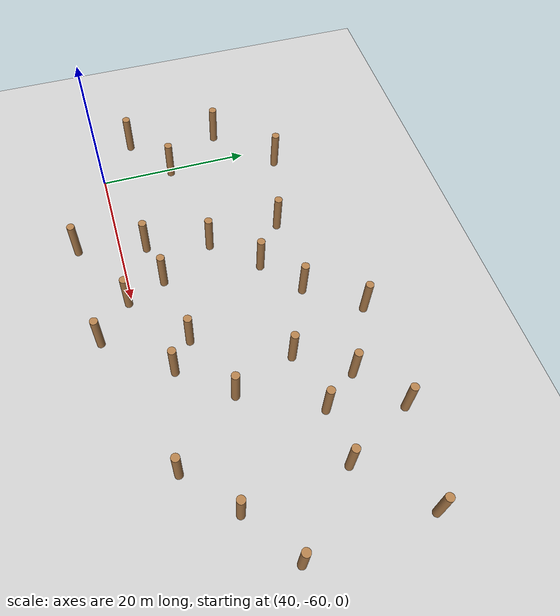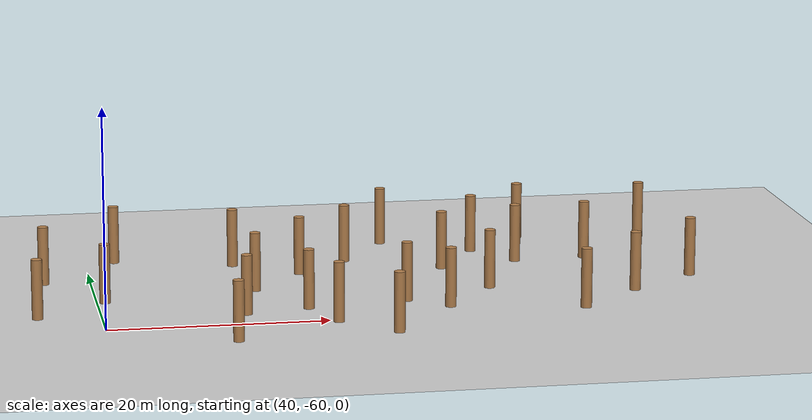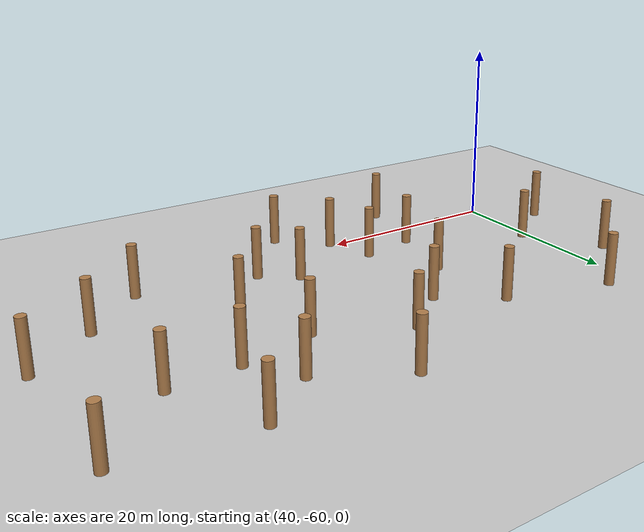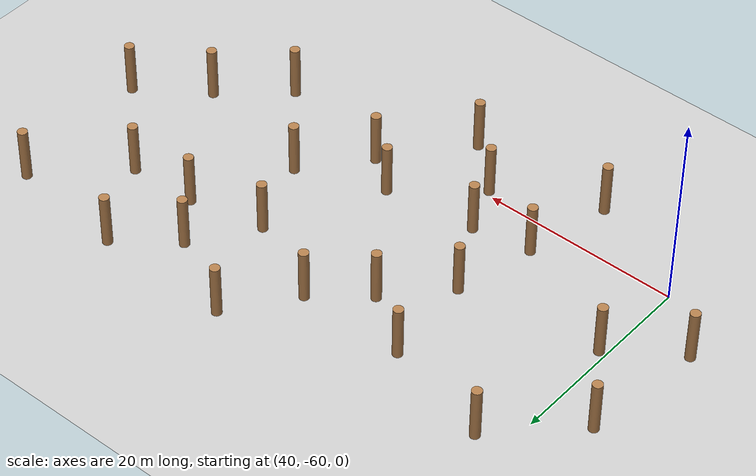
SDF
<sdf version="1.6">
 <world name="default">
  <model name="ground_plane">
   <static>1</static>
   <link name="link">
    <collision name="collision">
     <geometry><plane><normal>0 0 1</normal><size>100 100</size></plane></geometry>
     <surface><friction><ode><mu>100</mu><mu2>50</mu2></ode></friction></surface>
    </collision>
    <visual name="visual">
     <cast_shadows>0</cast_shadows>
     <geometry><plane><normal>0 0 1</normal><size>100 100</size></plane></geometry>
     <material>
      <script><uri>file://media/materials/scripts/gazebo.material</uri><name>Gazebo/Grey</name></script>
     </material>
    </visual>
   </link>
  </model>
  <model name="WoodPillars_4">
   <link name="link_clone_13">
    <inertial>
     <mass>1</mass>
     <inertia><ixx>0.145833</ixx><ixy>0</ixy><ixz>0</ixz><iyy>0.145833</iyy><iyz>0</iyz><izz>0.125</izz></inertia>
    </inertial>
    <pose>32.2715 -23.3528 -3e-06 0 -0 -0.001289</pose>
    <visual name="visual">
     <geometry><cylinder><radius>0.5</radius><length>5.50507</length></cylinder></geometry>
     <material>
      <script><name>Gazebo/Wood</name><uri>file://media/materials/scripts/gazebo.material</uri></script>
      <shader type="pixel"/>
     </material>
    </visual>
    <collision name="collision">
     <geometry><cylinder><radius>0.5</radius><length>5.50507</length></cylinder></geometry>
     <surface>
      <friction>
       <ode><mu>1</mu><mu2>1</mu2><fdir1>0 0 0</fdir1><slip1>0</slip1><slip2>0</slip2></ode>
       <torsional>
        <coefficient>1</coefficient>
        <patch_radius>0</patch_radius>
        <surface_radius>0</surface_radius>
        <use_patch_radius>1</use_patch_radius>
        <ode><slip>0</slip></ode>
       </torsional>
      </friction>
      <bounce><restitution_coefficient>0</restitution_coefficient><threshold>1e+06</threshold></bounce>
      <contact>
       <collide_without_contact>0</collide_without_contact>
       <collide_without_contact_bitmask>1</collide_without_contact_bitmask>
       <collide_bitmask>1</collide_bitmask>
       <ode>
        <soft_cfm>0</soft_cfm>
        <soft_erp>0.2</soft_erp>
        <kp>1e+13</kp>
        <kd>1</kd>
        <max_vel>0.01</max_vel>
        <min_depth>0</min_depth>
       </ode>
       <bullet>
        <split_impulse>1</split_impulse>
        <split_impulse_penetration_threshold>-0.01</split_impulse_penetration_threshold>
        <soft_cfm>0</soft_cfm>
        <soft_erp>0.2</soft_erp>
        <kp>1e+13</kp>
        <kd>1</kd>
       </bullet>
      </contact>
     </surface>
    </collision>
   </link>
   <link name="link_clone_14">
    <inertial>
     <mass>1</mass>
     <inertia><ixx>0.145833</ixx><ixy>0</ixy><ixz>0</ixz><iyy>0.145833</iyy><iyz>0</iyz><izz>0.125</izz></inertia>
    </inertial>
    <pose>9.31461 -20.9997 -1e-06 0 -0 -0.001289</pose>
    <visual name="visual">
     <geometry><cylinder><radius>0.5</radius><length>5.50507</length></cylinder></geometry>
     <material>
      <script><name>Gazebo/Wood</name><uri>file://media/materials/scripts/gazebo.material</uri></script>
      <shader type="pixel"/>
     </material>
    </visual>
    <collision name="collision">
     <geometry><cylinder><radius>0.5</radius><length>5.50507</length></cylinder></geometry>
     <surface>
      <friction>
       <ode><mu>1</mu><mu2>1</mu2><fdir1>0 0 0</fdir1><slip1>0</slip1><slip2>0</slip2></ode>
       <torsional>
        <coefficient>1</coefficient>
        <patch_radius>0</patch_radius>
        <surface_radius>0</surface_radius>
        <use_patch_radius>1</use_patch_radius>
        <ode><slip>0</slip></ode>
       </torsional>
      </friction>
      <bounce><restitution_coefficient>0</restitution_coefficient><threshold>1e+06</threshold></bounce>
      <contact>
       <collide_without_contact>0</collide_without_contact>
       <collide_without_contact_bitmask>1</collide_without_contact_bitmask>
       <collide_bitmask>1</collide_bitmask>
       <ode>
        <soft_cfm>0</soft_cfm>
        <soft_erp>0.2</soft_erp>
        <kp>1e+13</kp>
        <kd>1</kd>
        <max_vel>0.01</max_vel>
        <min_depth>0</min_depth>
       </ode>
       <bullet>
        <split_impulse>1</split_impulse>
        <split_impulse_penetration_threshold>-0.01</split_impulse_penetration_threshold>
        <soft_cfm>0</soft_cfm>
        <soft_erp>0.2</soft_erp>
        <kp>1e+13</kp>
        <kd>1</kd>
       </bullet>
      </contact>
     </surface>
    </collision>
   </link>
   <link name="link_clone_15">
    <inertial>
     <mass>1</mass>
     <inertia><ixx>0.145833</ixx><ixy>0</ixy><ixz>0</ixz><iyy>0.145833</iyy><iyz>0</iyz><izz>0.125</izz></inertia>
    </inertial>
    <pose>17.9894 -25.1945 -2e-06 0 -0 -0.001289</pose>
    <visual name="visual">
     <geometry><cylinder><radius>0.5</radius><length>5.50507</length></cylinder></geometry>
     <material>
      <script><name>Gazebo/Wood</name><uri>file://media/materials/scripts/gazebo.material</uri></script>
      <shader type="pixel"/>
     </material>
    </visual>
    <collision name="collision">
     <geometry><cylinder><radius>0.5</radius><length>5.50507</length></cylinder></geometry>
     <surface>
      <friction>
       <ode><mu>1</mu><mu2>1</mu2><fdir1>0 0 0</fdir1><slip1>0</slip1><slip2>0</slip2></ode>
       <torsional>
        <coefficient>1</coefficient>
        <patch_radius>0</patch_radius>
        <surface_radius>0</surface_radius>
        <use_patch_radius>1</use_patch_radius>
        <ode><slip>0</slip></ode>
       </torsional>
      </friction>
      <bounce><restitution_coefficient>0</restitution_coefficient><threshold>1e+06</threshold></bounce>
      <contact>
       <collide_without_contact>0</collide_without_contact>
       <collide_without_contact_bitmask>1</collide_without_contact_bitmask>
       <collide_bitmask>1</collide_bitmask>
       <ode>
        <soft_cfm>0</soft_cfm>
        <soft_erp>0.2</soft_erp>
        <kp>1e+13</kp>
        <kd>1</kd>
        <max_vel>0.01</max_vel>
        <min_depth>0</min_depth>
       </ode>
       <bullet>
        <split_impulse>1</split_impulse>
        <split_impulse_penetration_threshold>-0.01</split_impulse_penetration_threshold>
        <soft_cfm>0</soft_cfm>
        <soft_erp>0.2</soft_erp>
        <kp>1e+13</kp>
        <kd>1</kd>
       </bullet>
      </contact>
     </surface>
    </collision>
   </link>
   <link name="link_clone_26">
    <inertial>
     <mass>1</mass>
     <inertia><ixx>0.145833</ixx><ixy>0</ixy><ixz>0</ixz><iyy>0.145833</iyy><iyz>0</iyz><izz>0.125</izz></inertia>
    </inertial>
    <pose>13.9187 -14.5508 -1e-06 0 -0 -0.001289</pose>
    <visual name="visual">
     <geometry><cylinder><radius>0.5</radius><length>5.50507</length></cylinder></geometry>
     <material>
      <script><name>Gazebo/Wood</name><uri>file://media/materials/scripts/gazebo.material</uri></script>
      <shader type="pixel"/>
     </material>
    </visual>
    <collision name="collision">
     <geometry><cylinder><radius>0.5</radius><length>5.50507</length></cylinder></geometry>
     <surface>
      <friction>
       <ode><mu>1</mu><mu2>1</mu2><fdir1>0 0 0</fdir1><slip1>0</slip1><slip2>0</slip2></ode>
       <torsional>
        <coefficient>1</coefficient>
        <patch_radius>0</patch_radius>
        <surface_radius>0</surface_radius>
        <use_patch_radius>1</use_patch_radius>
        <ode><slip>0</slip></ode>
       </torsional>
      </friction>
      <bounce><restitution_coefficient>0</restitution_coefficient><threshold>1e+06</threshold></bounce>
      <contact>
       <collide_without_contact>0</collide_without_contact>
       <collide_without_contact_bitmask>1</collide_without_contact_bitmask>
       <collide_bitmask>1</collide_bitmask>
       <ode>
        <soft_cfm>0</soft_cfm>
        <soft_erp>0.2</soft_erp>
        <kp>1e+13</kp>
        <kd>1</kd>
        <max_vel>0.01</max_vel>
        <min_depth>0</min_depth>
       </ode>
       <bullet>
        <split_impulse>1</split_impulse>
        <split_impulse_penetration_threshold>-0.01</split_impulse_penetration_threshold>
        <soft_cfm>0</soft_cfm>
        <soft_erp>0.2</soft_erp>
        <kp>1e+13</kp>
        <kd>1</kd>
       </bullet>
      </contact>
     </surface>
    </collision>
   </link>
   <link name="link_clone_27">
    <inertial>
     <mass>1</mass>
     <inertia><ixx>0.145833</ixx><ixy>0</ixy><ixz>0</ixz><iyy>0.145833</iyy><iyz>0</iyz><izz>0.125</izz></inertia>
    </inertial>
    <pose>4.38632 -25.0605 -1e-06 0 -0 -0.001289</pose>
    <visual name="visual">
     <geometry><cylinder><radius>0.5</radius><length>5.50507</length></cylinder></geometry>
     <material>
      <script><name>Gazebo/Wood</name><uri>file://media/materials/scripts/gazebo.material</uri></script>
      <shader type="pixel"/>
     </material>
    </visual>
    <collision name="collision">
     <geometry><cylinder><radius>0.5</radius><length>5.50507</length></cylinder></geometry>
     <surface>
      <friction>
       <ode><mu>1</mu><mu2>1</mu2><fdir1>0 0 0</fdir1><slip1>0</slip1><slip2>0</slip2></ode>
       <torsional>
        <coefficient>1</coefficient>
        <patch_radius>0</patch_radius>
        <surface_radius>0</surface_radius>
        <use_patch_radius>1</use_patch_radius>
        <ode><slip>0</slip></ode>
       </torsional>
      </friction>
      <bounce><restitution_coefficient>0</restitution_coefficient><threshold>1e+06</threshold></bounce>
      <contact>
       <collide_without_contact>0</collide_without_contact>
       <collide_without_contact_bitmask>1</collide_without_contact_bitmask>
       <collide_bitmask>1</collide_bitmask>
       <ode>
        <soft_cfm>0</soft_cfm>
        <soft_erp>0.2</soft_erp>
        <kp>1e+13</kp>
        <kd>1</kd>
        <max_vel>0.01</max_vel>
        <min_depth>0</min_depth>
       </ode>
       <bullet>
        <split_impulse>1</split_impulse>
        <split_impulse_penetration_threshold>-0.01</split_impulse_penetration_threshold>
        <soft_cfm>0</soft_cfm>
        <soft_erp>0.2</soft_erp>
        <kp>1e+13</kp>
        <kd>1</kd>
       </bullet>
      </contact>
     </surface>
    </collision>
   </link>
   <link name="link_clone_28">
    <inertial>
     <mass>1</mass>
     <inertia><ixx>0.145833</ixx><ixy>0</ixy><ixz>0</ixz><iyy>0.145833</iyy><iyz>0</iyz><izz>0.125</izz></inertia>
    </inertial>
    <pose>27.5353 -14.766 -3e-06 0 -0 -0.001289</pose>
    <visual name="visual">
     <geometry><cylinder><radius>0.5</radius><length>5.50507</length></cylinder></geometry>
     <material>
      <script><name>Gazebo/Wood</name><uri>file://media/materials/scripts/gazebo.material</uri></script>
      <shader type="pixel"/>
     </material>
    </visual>
    <collision name="collision">
     <geometry><cylinder><radius>0.5</radius><length>5.50507</length></cylinder></geometry>
     <surface>
      <friction>
       <ode><mu>1</mu><mu2>1</mu2><fdir1>0 0 0</fdir1><slip1>0</slip1><slip2>0</slip2></ode>
       <torsional>
        <coefficient>1</coefficient>
        <patch_radius>0</patch_radius>
        <surface_radius>0</surface_radius>
        <use_patch_radius>1</use_patch_radius>
        <ode><slip>0</slip></ode>
       </torsional>
      </friction>
      <bounce><restitution_coefficient>0</restitution_coefficient><threshold>1e+06</threshold></bounce>
      <contact>
       <collide_without_contact>0</collide_without_contact>
       <collide_without_contact_bitmask>1</collide_without_contact_bitmask>
       <collide_bitmask>1</collide_bitmask>
       <ode>
        <soft_cfm>0</soft_cfm>
        <soft_erp>0.2</soft_erp>
        <kp>1e+13</kp>
        <kd>1</kd>
        <max_vel>0.01</max_vel>
        <min_depth>0</min_depth>
       </ode>
       <bullet>
        <split_impulse>1</split_impulse>
        <split_impulse_penetration_threshold>-0.01</split_impulse_penetration_threshold>
        <soft_cfm>0</soft_cfm>
        <soft_erp>0.2</soft_erp>
        <kp>1e+13</kp>
        <kd>1</kd>
       </bullet>
      </contact>
     </surface>
    </collision>
   </link>
   <link name="link_clone_29">
    <inertial>
     <mass>1</mass>
     <inertia><ixx>0.145833</ixx><ixy>0</ixy><ixz>0</ixz><iyy>0.145833</iyy><iyz>0</iyz><izz>0.125</izz></inertia>
    </inertial>
    <pose>39.4401 -16.2696 -4e-06 0 -0 -0.001289</pose>
    <visual name="visual">
     <geometry><cylinder><radius>0.5</radius><length>5.50507</length></cylinder></geometry>
     <material>
      <script><name>Gazebo/Wood</name><uri>file://media/materials/scripts/gazebo.material</uri></script>
      <shader type="pixel"/>
     </material>
    </visual>
    <collision name="collision">
     <geometry><cylinder><radius>0.5</radius><length>5.50507</length></cylinder></geometry>
     <surface>
      <friction>
       <ode><mu>1</mu><mu2>1</mu2><fdir1>0 0 0</fdir1><slip1>0</slip1><slip2>0</slip2></ode>
       <torsional>
        <coefficient>1</coefficient>
        <patch_radius>0</patch_radius>
        <surface_radius>0</surface_radius>
        <use_patch_radius>1</use_patch_radius>
        <ode><slip>0</slip></ode>
       </torsional>
      </friction>
      <bounce><restitution_coefficient>0</restitution_coefficient><threshold>1e+06</threshold></bounce>
      <contact>
       <collide_without_contact>0</collide_without_contact>
       <collide_without_contact_bitmask>1</collide_without_contact_bitmask>
       <collide_bitmask>1</collide_bitmask>
       <ode>
        <soft_cfm>0</soft_cfm>
        <soft_erp>0.2</soft_erp>
        <kp>1e+13</kp>
        <kd>1</kd>
        <max_vel>0.01</max_vel>
        <min_depth>0</min_depth>
       </ode>
       <bullet>
        <split_impulse>1</split_impulse>
        <split_impulse_penetration_threshold>-0.01</split_impulse_penetration_threshold>
        <soft_cfm>0</soft_cfm>
        <soft_erp>0.2</soft_erp>
        <kp>1e+13</kp>
        <kd>1</kd>
       </bullet>
      </contact>
     </surface>
    </collision>
   </link>
   <link name="link_clone_34">
    <inertial>
     <mass>1</mass>
     <inertia><ixx>0.145833</ixx><ixy>0</ixy><ixz>0</ixz><iyy>0.145833</iyy><iyz>0</iyz><izz>0.125</izz></inertia>
    </inertial>
    <pose>25.4673 -23.5908 -3e-06 0 -0 -0.001289</pose>
    <visual name="visual">
     <geometry><cylinder><radius>0.5</radius><length>5.50507</length></cylinder></geometry>
     <material>
      <script><name>Gazebo/Wood</name><uri>file://media/materials/scripts/gazebo.material</uri></script>
      <shader type="pixel"/>
     </material>
    </visual>
    <collision name="collision">
     <geometry><cylinder><radius>0.5</radius><length>5.50507</length></cylinder></geometry>
     <surface>
      <friction>
       <ode><mu>1</mu><mu2>1</mu2><fdir1>0 0 0</fdir1><slip1>0</slip1><slip2>0</slip2></ode>
       <torsional>
        <coefficient>1</coefficient>
        <patch_radius>0</patch_radius>
        <surface_radius>0</surface_radius>
        <use_patch_radius>1</use_patch_radius>
        <ode><slip>0</slip></ode>
       </torsional>
      </friction>
      <bounce><restitution_coefficient>0</restitution_coefficient><threshold>1e+06</threshold></bounce>
      <contact>
       <collide_without_contact>0</collide_without_contact>
       <collide_without_contact_bitmask>1</collide_without_contact_bitmask>
       <collide_bitmask>1</collide_bitmask>
       <ode>
        <soft_cfm>0</soft_cfm>
        <soft_erp>0.2</soft_erp>
        <kp>1e+13</kp>
        <kd>1</kd>
        <max_vel>0.01</max_vel>
        <min_depth>0</min_depth>
       </ode>
       <bullet>
        <split_impulse>1</split_impulse>
        <split_impulse_penetration_threshold>-0.01</split_impulse_penetration_threshold>
        <soft_cfm>0</soft_cfm>
        <soft_erp>0.2</soft_erp>
        <kp>1e+13</kp>
        <kd>1</kd>
       </bullet>
      </contact>
     </surface>
    </collision>
   </link>
   <link name="link_clone_7">
    <inertial>
     <mass>1</mass>
     <inertia><ixx>0.145833</ixx><ixy>0</ixy><ixz>0</ixz><iyy>0.145833</iyy><iyz>0</iyz><izz>0.125</izz></inertia>
    </inertial>
    <pose>22.0331 -19.0814 -2e-06 0 -0 -0.001289</pose>
    <visual name="visual">
     <geometry><cylinder><radius>0.5</radius><length>5.50507</length></cylinder></geometry>
     <material>
      <script><name>Gazebo/Wood</name><uri>file://media/materials/scripts/gazebo.material</uri></script>
      <shader type="pixel"/>
     </material>
    </visual>
    <collision name="collision">
     <geometry><cylinder><radius>0.5</radius><length>5.50507</length></cylinder></geometry>
     <surface>
      <friction>
       <ode><mu>1</mu><mu2>1</mu2><fdir1>0 0 0</fdir1><slip1>0</slip1><slip2>0</slip2></ode>
       <torsional>
        <coefficient>1</coefficient>
        <patch_radius>0</patch_radius>
        <surface_radius>0</surface_radius>
        <use_patch_radius>1</use_patch_radius>
        <ode><slip>0</slip></ode>
       </torsional>
      </friction>
      <bounce><restitution_coefficient>0</restitution_coefficient><threshold>1e+06</threshold></bounce>
      <contact>
       <collide_without_contact>0</collide_without_contact>
       <collide_without_contact_bitmask>1</collide_without_contact_bitmask>
       <collide_bitmask>1</collide_bitmask>
       <ode>
        <soft_cfm>0</soft_cfm>
        <soft_erp>0.2</soft_erp>
        <kp>1e+13</kp>
        <kd>1</kd>
        <max_vel>0.01</max_vel>
        <min_depth>0</min_depth>
       </ode>
       <bullet>
        <split_impulse>1</split_impulse>
        <split_impulse_penetration_threshold>-0.01</split_impulse_penetration_threshold>
        <soft_cfm>0</soft_cfm>
        <soft_erp>0.2</soft_erp>
        <kp>1e+13</kp>
        <kd>1</kd>
       </bullet>
      </contact>
     </surface>
    </collision>
   </link>
   <link name="link_clone_9">
    <inertial>
     <mass>1</mass>
     <inertia><ixx>0.145833</ixx><ixy>0</ixy><ixz>0</ixz><iyy>0.145833</iyy><iyz>0</iyz><izz>0.125</izz></inertia>
    </inertial>
    <pose>-1.43964 -21.0028 0 0 -0 -0.001289</pose>
    <visual name="visual">
     <geometry><cylinder><radius>0.5</radius><length>5.50507</length></cylinder></geometry>
     <material>
      <script><name>Gazebo/Wood</name><uri>file://media/materials/scripts/gazebo.material</uri></script>
      <shader type="pixel"/>
     </material>
    </visual>
    <collision name="collision">
     <geometry><cylinder><radius>0.5</radius><length>5.50507</length></cylinder></geometry>
     <surface>
      <friction>
       <ode><mu>1</mu><mu2>1</mu2><fdir1>0 0 0</fdir1><slip1>0</slip1><slip2>0</slip2></ode>
       <torsional>
        <coefficient>1</coefficient>
        <patch_radius>0</patch_radius>
        <surface_radius>0</surface_radius>
        <use_patch_radius>1</use_patch_radius>
        <ode><slip>0</slip></ode>
       </torsional>
      </friction>
      <bounce><restitution_coefficient>0</restitution_coefficient><threshold>1e+06</threshold></bounce>
      <contact>
       <collide_without_contact>0</collide_without_contact>
       <collide_without_contact_bitmask>1</collide_without_contact_bitmask>
       <collide_bitmask>1</collide_bitmask>
       <ode>
        <soft_cfm>0</soft_cfm>
        <soft_erp>0.2</soft_erp>
        <kp>1e+13</kp>
        <kd>1</kd>
        <max_vel>0.01</max_vel>
        <min_depth>0</min_depth>
       </ode>
       <bullet>
        <split_impulse>1</split_impulse>
        <split_impulse_penetration_threshold>-0.01</split_impulse_penetration_threshold>
        <soft_cfm>0</soft_cfm>
        <soft_erp>0.2</soft_erp>
        <kp>1e+13</kp>
        <kd>1</kd>
       </bullet>
      </contact>
     </surface>
    </collision>
   </link>
   <static>0</static>
   <pose>55.2629 -17.9892 2.75253 0 -0 0.001504</pose>
  </model>
  <model name="WoodPillars_5">
   <link name="link_clone_10">
    <inertial>
     <mass>1</mass>
     <inertia><ixx>0.145833</ixx><ixy>0</ixy><ixz>0</ixz><iyy>0.145833</iyy><iyz>0</iyz><izz>0.125</izz></inertia>
    </inertial>
    <pose>2.50237 12.8939 0 0 -0 -0.001289</pose>
    <visual name="visual">
     <geometry><cylinder><radius>0.5</radius><length>5.50507</length></cylinder></geometry>
     <material>
      <script><name>Gazebo/Wood</name><uri>file://media/materials/scripts/gazebo.material</uri></script>
      <shader type="pixel"/>
     </material>
    </visual>
    <collision name="collision">
     <geometry><cylinder><radius>0.5</radius><length>5.50507</length></cylinder></geometry>
     <surface>
      <friction>
       <ode><mu>1</mu><mu2>1</mu2><fdir1>0 0 0</fdir1><slip1>0</slip1><slip2>0</slip2></ode>
       <torsional>
        <coefficient>1</coefficient>
        <patch_radius>0</patch_radius>
        <surface_radius>0</surface_radius>
        <use_patch_radius>1</use_patch_radius>
        <ode><slip>0</slip></ode>
       </torsional>
      </friction>
      <bounce><restitution_coefficient>0</restitution_coefficient><threshold>1e+06</threshold></bounce>
      <contact>
       <collide_without_contact>0</collide_without_contact>
       <collide_without_contact_bitmask>1</collide_without_contact_bitmask>
       <collide_bitmask>1</collide_bitmask>
       <ode>
        <soft_cfm>0</soft_cfm>
        <soft_erp>0.2</soft_erp>
        <kp>1e+13</kp>
        <kd>1</kd>
        <max_vel>0.01</max_vel>
        <min_depth>0</min_depth>
       </ode>
       <bullet>
        <split_impulse>1</split_impulse>
        <split_impulse_penetration_threshold>-0.01</split_impulse_penetration_threshold>
        <soft_cfm>0</soft_cfm>
        <soft_erp>0.2</soft_erp>
        <kp>1e+13</kp>
        <kd>1</kd>
       </bullet>
      </contact>
     </surface>
    </collision>
   </link>
   <link name="link_clone_11">
    <inertial>
     <mass>1</mass>
     <inertia><ixx>0.145833</ixx><ixy>0</ixy><ixz>0</ixz><iyy>0.145833</iyy><iyz>0</iyz><izz>0.125</izz></inertia>
    </inertial>
    <pose>20.1245 17.4079 -2e-06 0 -0 -0.001289</pose>
    <visual name="visual">
     <geometry><cylinder><radius>0.5</radius><length>5.50507</length></cylinder></geometry>
     <material>
      <script><name>Gazebo/Wood</name><uri>file://media/materials/scripts/gazebo.material</uri></script>
      <shader type="pixel"/>
     </material>
    </visual>
    <collision name="collision">
     <geometry><cylinder><radius>0.5</radius><length>5.50507</length></cylinder></geometry>
     <surface>
      <friction>
       <ode><mu>1</mu><mu2>1</mu2><fdir1>0 0 0</fdir1><slip1>0</slip1><slip2>0</slip2></ode>
       <torsional>
        <coefficient>1</coefficient>
        <patch_radius>0</patch_radius>
        <surface_radius>0</surface_radius>
        <use_patch_radius>1</use_patch_radius>
        <ode><slip>0</slip></ode>
       </torsional>
      </friction>
      <bounce><restitution_coefficient>0</restitution_coefficient><threshold>1e+06</threshold></bounce>
      <contact>
       <collide_without_contact>0</collide_without_contact>
       <collide_without_contact_bitmask>1</collide_without_contact_bitmask>
       <collide_bitmask>1</collide_bitmask>
       <ode>
        <soft_cfm>0</soft_cfm>
        <soft_erp>0.2</soft_erp>
        <kp>1e+13</kp>
        <kd>1</kd>
        <max_vel>0.01</max_vel>
        <min_depth>0</min_depth>
       </ode>
       <bullet>
        <split_impulse>1</split_impulse>
        <split_impulse_penetration_threshold>-0.01</split_impulse_penetration_threshold>
        <soft_cfm>0</soft_cfm>
        <soft_erp>0.2</soft_erp>
        <kp>1e+13</kp>
        <kd>1</kd>
       </bullet>
      </contact>
     </surface>
    </collision>
   </link>
   <link name="link_clone_18">
    <inertial>
     <mass>1</mass>
     <inertia><ixx>0.145833</ixx><ixy>0</ixy><ixz>0</ixz><iyy>0.145833</iyy><iyz>0</iyz><izz>0.125</izz></inertia>
    </inertial>
    <pose>9.1573 3.67739 -1e-06 0 -0 -0.001289</pose>
    <visual name="visual">
     <geometry><cylinder><radius>0.5</radius><length>5.50507</length></cylinder></geometry>
     <material>
      <script><name>Gazebo/Wood</name><uri>file://media/materials/scripts/gazebo.material</uri></script>
      <shader type="pixel"/>
     </material>
    </visual>
    <collision name="collision">
     <geometry><cylinder><radius>0.5</radius><length>5.50507</length></cylinder></geometry>
     <surface>
      <friction>
       <ode><mu>1</mu><mu2>1</mu2><fdir1>0 0 0</fdir1><slip1>0</slip1><slip2>0</slip2></ode>
       <torsional>
        <coefficient>1</coefficient>
        <patch_radius>0</patch_radius>
        <surface_radius>0</surface_radius>
        <use_patch_radius>1</use_patch_radius>
        <ode><slip>0</slip></ode>
       </torsional>
      </friction>
      <bounce><restitution_coefficient>0</restitution_coefficient><threshold>1e+06</threshold></bounce>
      <contact>
       <collide_without_contact>0</collide_without_contact>
       <collide_without_contact_bitmask>1</collide_without_contact_bitmask>
       <collide_bitmask>1</collide_bitmask>
       <ode>
        <soft_cfm>0</soft_cfm>
        <soft_erp>0.2</soft_erp>
        <kp>1e+13</kp>
        <kd>1</kd>
        <max_vel>0.01</max_vel>
        <min_depth>0</min_depth>
       </ode>
       <bullet>
        <split_impulse>1</split_impulse>
        <split_impulse_penetration_threshold>-0.01</split_impulse_penetration_threshold>
        <soft_cfm>0</soft_cfm>
        <soft_erp>0.2</soft_erp>
        <kp>1e+13</kp>
        <kd>1</kd>
       </bullet>
      </contact>
     </surface>
    </collision>
   </link>
   <link name="link_clone_19">
    <inertial>
     <mass>1</mass>
     <inertia><ixx>0.145833</ixx><ixy>0</ixy><ixz>0</ixz><iyy>0.145833</iyy><iyz>0</iyz><izz>0.125</izz></inertia>
    </inertial>
    <pose>-3.28611 11.8265 -0 0 -0 -0.001289</pose>
    <visual name="visual">
     <geometry><cylinder><radius>0.5</radius><length>5.50507</length></cylinder></geometry>
     <material>
      <script><name>Gazebo/Wood</name><uri>file://media/materials/scripts/gazebo.material</uri></script>
      <shader type="pixel"/>
     </material>
    </visual>
    <collision name="collision">
     <geometry><cylinder><radius>0.5</radius><length>5.50507</length></cylinder></geometry>
     <surface>
      <friction>
       <ode><mu>1</mu><mu2>1</mu2><fdir1>0 0 0</fdir1><slip1>0</slip1><slip2>0</slip2></ode>
       <torsional>
        <coefficient>1</coefficient>
        <patch_radius>0</patch_radius>
        <surface_radius>0</surface_radius>
        <use_patch_radius>1</use_patch_radius>
        <ode><slip>0</slip></ode>
       </torsional>
      </friction>
      <bounce><restitution_coefficient>0</restitution_coefficient><threshold>1e+06</threshold></bounce>
      <contact>
       <collide_without_contact>0</collide_without_contact>
       <collide_without_contact_bitmask>1</collide_without_contact_bitmask>
       <collide_bitmask>1</collide_bitmask>
       <ode>
        <soft_cfm>0</soft_cfm>
        <soft_erp>0.2</soft_erp>
        <kp>1e+13</kp>
        <kd>1</kd>
        <max_vel>0.01</max_vel>
        <min_depth>0</min_depth>
       </ode>
       <bullet>
        <split_impulse>1</split_impulse>
        <split_impulse_penetration_threshold>-0.01</split_impulse_penetration_threshold>
        <soft_cfm>0</soft_cfm>
        <soft_erp>0.2</soft_erp>
        <kp>1e+13</kp>
        <kd>1</kd>
       </bullet>
      </contact>
     </surface>
    </collision>
   </link>
   <link name="link_clone_21">
    <inertial>
     <mass>1</mass>
     <inertia><ixx>0.145833</ixx><ixy>0</ixy><ixz>0</ixz><iyy>0.145833</iyy><iyz>0</iyz><izz>0.125</izz></inertia>
    </inertial>
    <pose>15.2748 11.406 -1e-06 0 -0 -0.001289</pose>
    <visual name="visual">
     <geometry><cylinder><radius>0.5</radius><length>5.50507</length></cylinder></geometry>
     <material>
      <script><name>Gazebo/Wood</name><uri>file://media/materials/scripts/gazebo.material</uri></script>
      <shader type="pixel"/>
     </material>
    </visual>
    <collision name="collision">
     <geometry><cylinder><radius>0.5</radius><length>5.50507</length></cylinder></geometry>
     <surface>
      <friction>
       <ode><mu>1</mu><mu2>1</mu2><fdir1>0 0 0</fdir1><slip1>0</slip1><slip2>0</slip2></ode>
       <torsional>
        <coefficient>1</coefficient>
        <patch_radius>0</patch_radius>
        <surface_radius>0</surface_radius>
        <use_patch_radius>1</use_patch_radius>
        <ode><slip>0</slip></ode>
       </torsional>
      </friction>
      <bounce><restitution_coefficient>0</restitution_coefficient><threshold>1e+06</threshold></bounce>
      <contact>
       <collide_without_contact>0</collide_without_contact>
       <collide_without_contact_bitmask>1</collide_without_contact_bitmask>
       <collide_bitmask>1</collide_bitmask>
       <ode>
        <soft_cfm>0</soft_cfm>
        <soft_erp>0.2</soft_erp>
        <kp>1e+13</kp>
        <kd>1</kd>
        <max_vel>0.01</max_vel>
        <min_depth>0</min_depth>
       </ode>
       <bullet>
        <split_impulse>1</split_impulse>
        <split_impulse_penetration_threshold>-0.01</split_impulse_penetration_threshold>
        <soft_cfm>0</soft_cfm>
        <soft_erp>0.2</soft_erp>
        <kp>1e+13</kp>
        <kd>1</kd>
       </bullet>
      </contact>
     </surface>
    </collision>
   </link>
   <link name="link_clone_22">
    <inertial>
     <mass>1</mass>
     <inertia><ixx>0.145833</ixx><ixy>0</ixy><ixz>0</ixz><iyy>0.145833</iyy><iyz>0</iyz><izz>0.125</izz></inertia>
    </inertial>
    <pose>27.313 9.05961 -2e-06 0 -0 -0.001289</pose>
    <visual name="visual">
     <geometry><cylinder><radius>0.5</radius><length>5.50507</length></cylinder></geometry>
     <material>
      <script><name>Gazebo/Wood</name><uri>file://media/materials/scripts/gazebo.material</uri></script>
      <shader type="pixel"/>
     </material>
    </visual>
    <collision name="collision">
     <geometry><cylinder><radius>0.5</radius><length>5.50507</length></cylinder></geometry>
     <surface>
      <friction>
       <ode><mu>1</mu><mu2>1</mu2><fdir1>0 0 0</fdir1><slip1>0</slip1><slip2>0</slip2></ode>
       <torsional>
        <coefficient>1</coefficient>
        <patch_radius>0</patch_radius>
        <surface_radius>0</surface_radius>
        <use_patch_radius>1</use_patch_radius>
        <ode><slip>0</slip></ode>
       </torsional>
      </friction>
      <bounce><restitution_coefficient>0</restitution_coefficient><threshold>1e+06</threshold></bounce>
      <contact>
       <collide_without_contact>0</collide_without_contact>
       <collide_without_contact_bitmask>1</collide_without_contact_bitmask>
       <collide_bitmask>1</collide_bitmask>
       <ode>
        <soft_cfm>0</soft_cfm>
        <soft_erp>0.2</soft_erp>
        <kp>1e+13</kp>
        <kd>1</kd>
        <max_vel>0.01</max_vel>
        <min_depth>0</min_depth>
       </ode>
       <bullet>
        <split_impulse>1</split_impulse>
        <split_impulse_penetration_threshold>-0.01</split_impulse_penetration_threshold>
        <soft_cfm>0</soft_cfm>
        <soft_erp>0.2</soft_erp>
        <kp>1e+13</kp>
        <kd>1</kd>
       </bullet>
      </contact>
     </surface>
    </collision>
   </link>
   <link name="link_clone_25">
    <inertial>
     <mass>1</mass>
     <inertia><ixx>0.145833</ixx><ixy>0</ixy><ixz>0</ixz><iyy>0.145833</iyy><iyz>0</iyz><izz>0.125</izz></inertia>
    </inertial>
    <pose>11.7271 14.0632 -1e-06 0 -0 -0.001289</pose>
    <visual name="visual">
     <geometry><cylinder><radius>0.5</radius><length>5.50507</length></cylinder></geometry>
     <material>
      <script><name>Gazebo/Wood</name><uri>file://media/materials/scripts/gazebo.material</uri></script>
      <shader type="pixel"/>
     </material>
    </visual>
    <collision name="collision">
     <geometry><cylinder><radius>0.5</radius><length>5.50507</length></cylinder></geometry>
     <surface>
      <friction>
       <ode><mu>1</mu><mu2>1</mu2><fdir1>0 0 0</fdir1><slip1>0</slip1><slip2>0</slip2></ode>
       <torsional>
        <coefficient>1</coefficient>
        <patch_radius>0</patch_radius>
        <surface_radius>0</surface_radius>
        <use_patch_radius>1</use_patch_radius>
        <ode><slip>0</slip></ode>
       </torsional>
      </friction>
      <bounce><restitution_coefficient>0</restitution_coefficient><threshold>1e+06</threshold></bounce>
      <contact>
       <collide_without_contact>0</collide_without_contact>
       <collide_without_contact_bitmask>1</collide_without_contact_bitmask>
       <collide_bitmask>1</collide_bitmask>
       <ode>
        <soft_cfm>0</soft_cfm>
        <soft_erp>0.2</soft_erp>
        <kp>1e+13</kp>
        <kd>1</kd>
        <max_vel>0.01</max_vel>
        <min_depth>0</min_depth>
       </ode>
       <bullet>
        <split_impulse>1</split_impulse>
        <split_impulse_penetration_threshold>-0.01</split_impulse_penetration_threshold>
        <soft_cfm>0</soft_cfm>
        <soft_erp>0.2</soft_erp>
        <kp>1e+13</kp>
        <kd>1</kd>
       </bullet>
      </contact>
     </surface>
    </collision>
   </link>
   <link name="link_clone_30">
    <inertial>
     <mass>1</mass>
     <inertia><ixx>0.145833</ixx><ixy>0</ixy><ixz>0</ixz><iyy>0.145833</iyy><iyz>0</iyz><izz>0.125</izz></inertia>
    </inertial>
    <pose>4.46339 7.97492 0 0 -0 -0.001289</pose>
    <visual name="visual">
     <geometry><cylinder><radius>0.5</radius><length>5.50507</length></cylinder></geometry>
     <material>
      <script><name>Gazebo/Wood</name><uri>file://media/materials/scripts/gazebo.material</uri></script>
      <shader type="pixel"/>
     </material>
    </visual>
    <collision name="collision">
     <geometry><cylinder><radius>0.5</radius><length>5.50507</length></cylinder></geometry>
     <surface>
      <friction>
       <ode><mu>1</mu><mu2>1</mu2><fdir1>0 0 0</fdir1><slip1>0</slip1><slip2>0</slip2></ode>
       <torsional>
        <coefficient>1</coefficient>
        <patch_radius>0</patch_radius>
        <surface_radius>0</surface_radius>
        <use_patch_radius>1</use_patch_radius>
        <ode><slip>0</slip></ode>
       </torsional>
      </friction>
      <bounce><restitution_coefficient>0</restitution_coefficient><threshold>1e+06</threshold></bounce>
      <contact>
       <collide_without_contact>0</collide_without_contact>
       <collide_without_contact_bitmask>1</collide_without_contact_bitmask>
       <collide_bitmask>1</collide_bitmask>
       <ode>
        <soft_cfm>0</soft_cfm>
        <soft_erp>0.2</soft_erp>
        <kp>1e+13</kp>
        <kd>1</kd>
        <max_vel>0.01</max_vel>
        <min_depth>0</min_depth>
       </ode>
       <bullet>
        <split_impulse>1</split_impulse>
        <split_impulse_penetration_threshold>-0.01</split_impulse_penetration_threshold>
        <soft_cfm>0</soft_cfm>
        <soft_erp>0.2</soft_erp>
        <kp>1e+13</kp>
        <kd>1</kd>
       </bullet>
      </contact>
     </surface>
    </collision>
   </link>
   <link name="link_clone_31">
    <inertial>
     <mass>1</mass>
     <inertia><ixx>0.145833</ixx><ixy>0</ixy><ixz>0</ixz><iyy>0.145833</iyy><iyz>0</iyz><izz>0.125</izz></inertia>
    </inertial>
    <pose>-1.44135 19.9016 0 0 -0 -0.001289</pose>
    <visual name="visual">
     <geometry><cylinder><radius>0.5</radius><length>5.50507</length></cylinder></geometry>
     <material>
      <script><name>Gazebo/Wood</name><uri>file://media/materials/scripts/gazebo.material</uri></script>
      <shader type="pixel"/>
     </material>
    </visual>
    <collision name="collision">
     <geometry><cylinder><radius>0.5</radius><length>5.50507</length></cylinder></geometry>
     <surface>
      <friction>
       <ode><mu>1</mu><mu2>1</mu2><fdir1>0 0 0</fdir1><slip1>0</slip1><slip2>0</slip2></ode>
       <torsional>
        <coefficient>1</coefficient>
        <patch_radius>0</patch_radius>
        <surface_radius>0</surface_radius>
        <use_patch_radius>1</use_patch_radius>
        <ode><slip>0</slip></ode>
       </torsional>
      </friction>
      <bounce><restitution_coefficient>0</restitution_coefficient><threshold>1e+06</threshold></bounce>
      <contact>
       <collide_without_contact>0</collide_without_contact>
       <collide_without_contact_bitmask>1</collide_without_contact_bitmask>
       <collide_bitmask>1</collide_bitmask>
       <ode>
        <soft_cfm>0</soft_cfm>
        <soft_erp>0.2</soft_erp>
        <kp>1e+13</kp>
        <kd>1</kd>
        <max_vel>0.01</max_vel>
        <min_depth>0</min_depth>
       </ode>
       <bullet>
        <split_impulse>1</split_impulse>
        <split_impulse_penetration_threshold>-0.01</split_impulse_penetration_threshold>
        <soft_cfm>0</soft_cfm>
        <soft_erp>0.2</soft_erp>
        <kp>1e+13</kp>
        <kd>1</kd>
       </bullet>
      </contact>
     </surface>
    </collision>
   </link>
   <link name="link_clone_33">
    <inertial>
     <mass>1</mass>
     <inertia><ixx>0.145833</ixx><ixy>0</ixy><ixz>0</ixz><iyy>0.145833</iyy><iyz>0</iyz><izz>0.125</izz></inertia>
    </inertial>
    <pose>39.6457 18.8804 -3e-06 0 -0 -0.001289</pose>
    <visual name="visual">
     <geometry><cylinder><radius>0.5</radius><length>5.50507</length></cylinder></geometry>
     <material>
      <script><name>Gazebo/Wood</name><uri>file://media/materials/scripts/gazebo.material</uri></script>
      <shader type="pixel"/>
     </material>
    </visual>
    <collision name="collision">
     <geometry><cylinder><radius>0.5</radius><length>5.50507</length></cylinder></geometry>
     <surface>
      <friction>
       <ode><mu>1</mu><mu2>1</mu2><fdir1>0 0 0</fdir1><slip1>0</slip1><slip2>0</slip2></ode>
       <torsional>
        <coefficient>1</coefficient>
        <patch_radius>0</patch_radius>
        <surface_radius>0</surface_radius>
        <use_patch_radius>1</use_patch_radius>
        <ode><slip>0</slip></ode>
       </torsional>
      </friction>
      <bounce><restitution_coefficient>0</restitution_coefficient><threshold>1e+06</threshold></bounce>
      <contact>
       <collide_without_contact>0</collide_without_contact>
       <collide_without_contact_bitmask>1</collide_without_contact_bitmask>
       <collide_bitmask>1</collide_bitmask>
       <ode>
        <soft_cfm>0</soft_cfm>
        <soft_erp>0.2</soft_erp>
        <kp>1e+13</kp>
        <kd>1</kd>
        <max_vel>0.01</max_vel>
        <min_depth>0</min_depth>
       </ode>
       <bullet>
        <split_impulse>1</split_impulse>
        <split_impulse_penetration_threshold>-0.01</split_impulse_penetration_threshold>
        <soft_cfm>0</soft_cfm>
        <soft_erp>0.2</soft_erp>
        <kp>1e+13</kp>
        <kd>1</kd>
       </bullet>
      </contact>
     </surface>
    </collision>
   </link>
   <link name="link_clone_35">
    <inertial>
     <mass>1</mass>
     <inertia><ixx>0.145833</ixx><ixy>0</ixy><ixz>0</ixz><iyy>0.145833</iyy><iyz>0</iyz><izz>0.125</izz></inertia>
    </inertial>
    <pose>-5.14728 3.10998 -0 0 -0 -0.001289</pose>
    <visual name="visual">
     <geometry><cylinder><radius>0.5</radius><length>5.50507</length></cylinder></geometry>
     <material>
      <script><name>Gazebo/Wood</name><uri>file://media/materials/scripts/gazebo.material</uri></script>
      <shader type="pixel"/>
     </material>
    </visual>
    <collision name="collision">
     <geometry><cylinder><radius>0.5</radius><length>5.50507</length></cylinder></geometry>
     <surface>
      <friction>
       <ode><mu>1</mu><mu2>1</mu2><fdir1>0 0 0</fdir1><slip1>0</slip1><slip2>0</slip2></ode>
       <torsional>
        <coefficient>1</coefficient>
        <patch_radius>0</patch_radius>
        <surface_radius>0</surface_radius>
        <use_patch_radius>1</use_patch_radius>
        <ode><slip>0</slip></ode>
       </torsional>
      </friction>
      <bounce><restitution_coefficient>0</restitution_coefficient><threshold>1e+06</threshold></bounce>
      <contact>
       <collide_without_contact>0</collide_without_contact>
       <collide_without_contact_bitmask>1</collide_without_contact_bitmask>
       <collide_bitmask>1</collide_bitmask>
       <ode>
        <soft_cfm>0</soft_cfm>
        <soft_erp>0.2</soft_erp>
        <kp>1e+13</kp>
        <kd>1</kd>
        <max_vel>0.01</max_vel>
        <min_depth>0</min_depth>
       </ode>
       <bullet>
        <split_impulse>1</split_impulse>
        <split_impulse_penetration_threshold>-0.01</split_impulse_penetration_threshold>
        <soft_cfm>0</soft_cfm>
        <soft_erp>0.2</soft_erp>
        <kp>1e+13</kp>
        <kd>1</kd>
       </bullet>
      </contact>
     </surface>
    </collision>
   </link>
   <link name="link_clone_5">
    <inertial>
     <mass>1</mass>
     <inertia><ixx>0.145833</ixx><ixy>0</ixy><ixz>0</ixz><iyy>0.145833</iyy><iyz>0</iyz><izz>0.125</izz></inertia>
    </inertial>
    <pose>33.2189 14.316 -3e-06 0 -0 -0.001289</pose>
    <visual name="visual">
     <geometry><cylinder><radius>0.5</radius><length>5.50507</length></cylinder></geometry>
     <material>
      <script><name>Gazebo/Wood</name><uri>file://media/materials/scripts/gazebo.material</uri></script>
      <shader type="pixel"/>
     </material>
    </visual>
    <collision name="collision">
     <geometry><cylinder><radius>0.5</radius><length>5.50507</length></cylinder></geometry>
     <surface>
      <friction>
       <ode><mu>1</mu><mu2>1</mu2><fdir1>0 0 0</fdir1><slip1>0</slip1><slip2>0</slip2></ode>
       <torsional>
        <coefficient>1</coefficient>
        <patch_radius>0</patch_radius>
        <surface_radius>0</surface_radius>
        <use_patch_radius>1</use_patch_radius>
        <ode><slip>0</slip></ode>
       </torsional>
      </friction>
      <bounce><restitution_coefficient>0</restitution_coefficient><threshold>1e+06</threshold></bounce>
      <contact>
       <collide_without_contact>0</collide_without_contact>
       <collide_without_contact_bitmask>1</collide_without_contact_bitmask>
       <collide_bitmask>1</collide_bitmask>
       <ode>
        <soft_cfm>0</soft_cfm>
        <soft_erp>0.2</soft_erp>
        <kp>1e+13</kp>
        <kd>1</kd>
        <max_vel>0.01</max_vel>
        <min_depth>0</min_depth>
       </ode>
       <bullet>
        <split_impulse>1</split_impulse>
        <split_impulse_penetration_threshold>-0.01</split_impulse_penetration_threshold>
        <soft_cfm>0</soft_cfm>
        <soft_erp>0.2</soft_erp>
        <kp>1e+13</kp>
        <kd>1</kd>
       </bullet>
      </contact>
     </surface>
    </collision>
   </link>
   <static>0</static>
   <pose>56.2518 -68.4111 2.75253 0 -0 0.001733</pose>
  </model>
  <model name="WoodPillars_8">
   <link name="link_clone_33">
    <inertial>
     <mass>1</mass>
     <inertia><ixx>0.145833</ixx><ixy>0</ixy><ixz>0</ixz><iyy>0.145833</iyy><iyz>0</iyz><izz>0.125</izz></inertia>
    </inertial>
    <pose>39.6457 18.8804 -3e-06 0 -0 -0.001289</pose>
    <visual name="visual">
     <geometry><cylinder><radius>0.5</radius><length>5.50507</length></cylinder></geometry>
     <material>
      <script><name>Gazebo/Wood</name><uri>file://media/materials/scripts/gazebo.material</uri></script>
      <shader type="pixel"/>
     </material>
    </visual>
    <collision name="collision">
     <geometry><cylinder><radius>0.5</radius><length>5.50507</length></cylinder></geometry>
     <surface>
      <friction>
       <ode><mu>1</mu><mu2>1</mu2><fdir1>0 0 0</fdir1><slip1>0</slip1><slip2>0</slip2></ode>
       <torsional>
        <coefficient>1</coefficient>
        <patch_radius>0</patch_radius>
        <surface_radius>0</surface_radius>
        <use_patch_radius>1</use_patch_radius>
        <ode><slip>0</slip></ode>
       </torsional>
      </friction>
      <bounce><restitution_coefficient>0</restitution_coefficient><threshold>1e+06</threshold></bounce>
      <contact>
       <collide_without_contact>0</collide_without_contact>
       <collide_without_contact_bitmask>1</collide_without_contact_bitmask>
       <collide_bitmask>1</collide_bitmask>
       <ode>
        <soft_cfm>0</soft_cfm>
        <soft_erp>0.2</soft_erp>
        <kp>1e+13</kp>
        <kd>1</kd>
        <max_vel>0.01</max_vel>
        <min_depth>0</min_depth>
       </ode>
       <bullet>
        <split_impulse>1</split_impulse>
        <split_impulse_penetration_threshold>-0.01</split_impulse_penetration_threshold>
        <soft_cfm>0</soft_cfm>
        <soft_erp>0.2</soft_erp>
        <kp>1e+13</kp>
        <kd>1</kd>
       </bullet>
      </contact>
     </surface>
    </collision>
   </link>
   <link name="link_clone_5">
    <inertial>
     <mass>1</mass>
     <inertia><ixx>0.145833</ixx><ixy>0</ixy><ixz>0</ixz><iyy>0.145833</iyy><iyz>0</iyz><izz>0.125</izz></inertia>
    </inertial>
    <pose>33.2189 14.316 -3e-06 0 -0 -0.001289</pose>
    <visual name="visual">
     <geometry><cylinder><radius>0.5</radius><length>5.50507</length></cylinder></geometry>
     <material>
      <script><name>Gazebo/Wood</name><uri>file://media/materials/scripts/gazebo.material</uri></script>
      <shader type="pixel"/>
     </material>
    </visual>
    <collision name="collision">
     <geometry><cylinder><radius>0.5</radius><length>5.50507</length></cylinder></geometry>
     <surface>
      <friction>
       <ode><mu>1</mu><mu2>1</mu2><fdir1>0 0 0</fdir1><slip1>0</slip1><slip2>0</slip2></ode>
       <torsional>
        <coefficient>1</coefficient>
        <patch_radius>0</patch_radius>
        <surface_radius>0</surface_radius>
        <use_patch_radius>1</use_patch_radius>
        <ode><slip>0</slip></ode>
       </torsional>
      </friction>
      <bounce><restitution_coefficient>0</restitution_coefficient><threshold>1e+06</threshold></bounce>
      <contact>
       <collide_without_contact>0</collide_without_contact>
       <collide_without_contact_bitmask>1</collide_without_contact_bitmask>
       <collide_bitmask>1</collide_bitmask>
       <ode>
        <soft_cfm>0</soft_cfm>
        <soft_erp>0.2</soft_erp>
        <kp>1e+13</kp>
        <kd>1</kd>
        <max_vel>0.01</max_vel>
        <min_depth>0</min_depth>
       </ode>
       <bullet>
        <split_impulse>1</split_impulse>
        <split_impulse_penetration_threshold>-0.01</split_impulse_penetration_threshold>
        <soft_cfm>0</soft_cfm>
        <soft_erp>0.2</soft_erp>
        <kp>1e+13</kp>
        <kd>1</kd>
       </bullet>
      </contact>
     </surface>
    </collision>
   </link>
   <static>0</static>
   <pose>1.10151 -69.5089 2.75253 0 -0 0.001606</pose>
  </model>
  <model name="WoodPillars_7">
   <link name="link_clone_13">
    <inertial>
     <mass>1</mass>
     <inertia><ixx>0.145833</ixx><ixy>0</ixy><ixz>0</ixz><iyy>0.145833</iyy><iyz>0</iyz><izz>0.125</izz></inertia>
    </inertial>
    <pose>32.2715 -23.3528 -3e-06 0 -0 -0.001289</pose>
    <visual name="visual">
     <geometry><cylinder><radius>0.5</radius><length>5.50507</length></cylinder></geometry>
     <material>
      <script><name>Gazebo/Wood</name><uri>file://media/materials/scripts/gazebo.material</uri></script>
      <shader type="pixel"/>
     </material>
    </visual>
    <collision name="collision">
     <geometry><cylinder><radius>0.5</radius><length>5.50507</length></cylinder></geometry>
     <surface>
      <friction>
       <ode><mu>1</mu><mu2>1</mu2><fdir1>0 0 0</fdir1><slip1>0</slip1><slip2>0</slip2></ode>
       <torsional>
        <coefficient>1</coefficient>
        <patch_radius>0</patch_radius>
        <surface_radius>0</surface_radius>
        <use_patch_radius>1</use_patch_radius>
        <ode><slip>0</slip></ode>
       </torsional>
      </friction>
      <bounce><restitution_coefficient>0</restitution_coefficient><threshold>1e+06</threshold></bounce>
      <contact>
       <collide_without_contact>0</collide_without_contact>
       <collide_without_contact_bitmask>1</collide_without_contact_bitmask>
       <collide_bitmask>1</collide_bitmask>
       <ode>
        <soft_cfm>0</soft_cfm>
        <soft_erp>0.2</soft_erp>
        <kp>1e+13</kp>
        <kd>1</kd>
        <max_vel>0.01</max_vel>
        <min_depth>0</min_depth>
       </ode>
       <bullet>
        <split_impulse>1</split_impulse>
        <split_impulse_penetration_threshold>-0.01</split_impulse_penetration_threshold>
        <soft_cfm>0</soft_cfm>
        <soft_erp>0.2</soft_erp>
        <kp>1e+13</kp>
        <kd>1</kd>
       </bullet>
      </contact>
     </surface>
    </collision>
   </link>
   <link name="link_clone_29">
    <inertial>
     <mass>1</mass>
     <inertia><ixx>0.145833</ixx><ixy>0</ixy><ixz>0</ixz><iyy>0.145833</iyy><iyz>0</iyz><izz>0.125</izz></inertia>
    </inertial>
    <pose>39.4401 -16.2696 -4e-06 0 -0 -0.001289</pose>
    <visual name="visual">
     <geometry><cylinder><radius>0.5</radius><length>5.50507</length></cylinder></geometry>
     <material>
      <script><name>Gazebo/Wood</name><uri>file://media/materials/scripts/gazebo.material</uri></script>
      <shader type="pixel"/>
     </material>
    </visual>
    <collision name="collision">
     <geometry><cylinder><radius>0.5</radius><length>5.50507</length></cylinder></geometry>
     <surface>
      <friction>
       <ode><mu>1</mu><mu2>1</mu2><fdir1>0 0 0</fdir1><slip1>0</slip1><slip2>0</slip2></ode>
       <torsional>
        <coefficient>1</coefficient>
        <patch_radius>0</patch_radius>
        <surface_radius>0</surface_radius>
        <use_patch_radius>1</use_patch_radius>
        <ode><slip>0</slip></ode>
       </torsional>
      </friction>
      <bounce><restitution_coefficient>0</restitution_coefficient><threshold>1e+06</threshold></bounce>
      <contact>
       <collide_without_contact>0</collide_without_contact>
       <collide_without_contact_bitmask>1</collide_without_contact_bitmask>
       <collide_bitmask>1</collide_bitmask>
       <ode>
        <soft_cfm>0</soft_cfm>
        <soft_erp>0.2</soft_erp>
        <kp>1e+13</kp>
        <kd>1</kd>
        <max_vel>0.01</max_vel>
        <min_depth>0</min_depth>
       </ode>
       <bullet>
        <split_impulse>1</split_impulse>
        <split_impulse_penetration_threshold>-0.01</split_impulse_penetration_threshold>
        <soft_cfm>0</soft_cfm>
        <soft_erp>0.2</soft_erp>
        <kp>1e+13</kp>
        <kd>1</kd>
       </bullet>
      </contact>
     </surface>
    </collision>
   </link>
   <static>0</static>
   <pose>3.36685 -19.7312 2.75253 0 -0 0.001386</pose>
  </model>
 </world>
</sdf>
